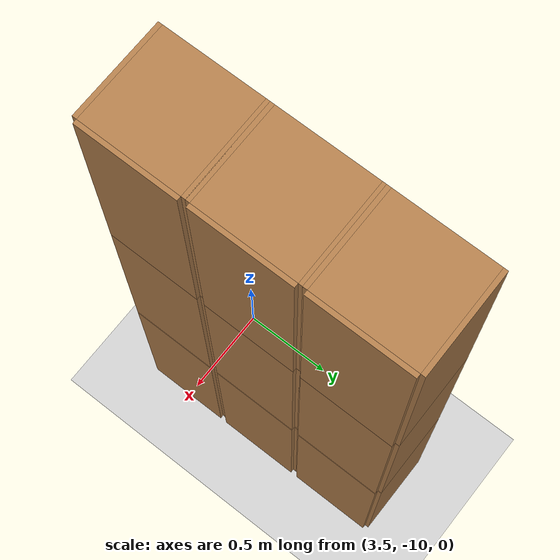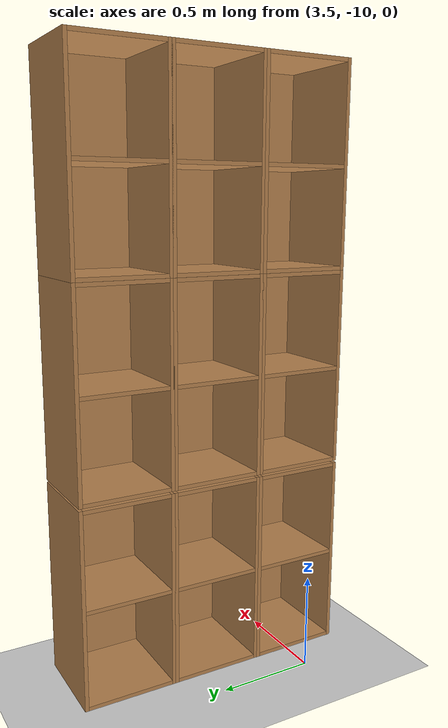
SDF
<sdf version="1.6">
 <world name="default">
  <model name="ground_plane">
   <static>1</static>
   <link name="link">
    <collision name="collision">
     <geometry><plane><normal>0 0 1</normal><size>100 100</size></plane></geometry>
     <surface>
      <contact><collide_bitmask>65535</collide_bitmask></contact>
      <friction><ode><mu>100</mu><mu2>50</mu2></ode></friction>
     </surface>
    </collision>
    <visual name="visual">
     <cast_shadows>0</cast_shadows>
     <geometry><plane><normal>0 0 1</normal><size>100 100</size></plane></geometry>
     <material>
      <script><uri>file://media/materials/scripts/gazebo.material</uri><name>Gazebo/Grey</name></script>
     </material>
    </visual>
   </link>
  </model>
  <model name="Locker18">
   <model name="Locker18">
    <model name="Locker3">
     <model name="cabinet">
      <static>1</static>
      <link name="cabinet_bottom_plate">
       <inertial>
        <pose>0 0 -1 0 -0 0</pose>
        <inertia><ixx>2.05</ixx><ixy>0</ixy><ixz>0</ixz><iyy>2.05</iyy><iyz>0</iyz><izz>2.05</izz></inertia>
        <mass>25</mass>
       </inertial>
       <collision name="cabinet_bottom_plate_geom">
        <pose>0 0 0.01 0 -0 0</pose>
        <geometry><box><size>0.45 0.45 0.02</size></box></geometry>
       </collision>
       <visual name="cabinet_bottom_plate_geom_visual">
        <pose>0 0 0.01 0 -0 0</pose>
        <geometry><box><size>0.45 0.45 0.02</size></box></geometry>
        <material>
         <script><uri>file://media/materials/scripts/gazebo.material</uri><name>Gazebo/Wood</name></script>
        </material>
       </visual>
       <collision name="cabinet_bottom_plate_geom_cabinet_back_plate">
        <pose>0.235 0 0.51 0 -0 0</pose>
        <geometry><box><size>0.02 0.45 1.02</size></box></geometry>
       </collision>
       <visual name="cabinet_bottom_plate_geom_cabinet_back_plate_visual">
        <pose>0.235 0 0.51 0 -0 0</pose>
        <geometry><box><size>0.02 0.45 1.02</size></box></geometry>
        <material>
         <script><uri>file://media/materials/scripts/gazebo.material</uri><name>Gazebo/Wood</name></script>
        </material>
       </visual>
       <collision name="cabinet_bottom_plate_geom_cabinet_left_plate">
        <pose>0 0.235 0.51 0 -0 0</pose>
        <geometry><box><size>0.45 0.02 1.02</size></box></geometry>
       </collision>
       <visual name="cabinet_bottom_plate_geom_cabinet_left_plate_visual">
        <pose>0 0.235 0.51 0 -0 0</pose>
        <geometry><box><size>0.45 0.02 1.02</size></box></geometry>
        <material>
         <script><uri>file://media/materials/scripts/gazebo.material</uri><name>Gazebo/Wood</name></script>
        </material>
       </visual>
       <collision name="cabinet_bottom_plate_geom_cabinet_middle_plate">
        <pose>0 0 0.51 0 -0 0</pose>
        <geometry><box><size>0.45 0.45 0.02</size></box></geometry>
       </collision>
       <visual name="cabinet_bottom_plate_geom_cabinet_middle_plate_visual">
        <pose>0 0 0.51 0 -0 0</pose>
        <geometry><box><size>0.45 0.45 0.02</size></box></geometry>
        <material>
         <script><uri>file://media/materials/scripts/gazebo.material</uri><name>Gazebo/Wood</name></script>
        </material>
       </visual>
       <collision name="cabinet_bottom_plate_geom_cabinet_right_plate">
        <pose>0 -0.235 0.51 0 -0 0</pose>
        <geometry><box><size>0.45 0.02 1.02</size></box></geometry>
       </collision>
       <visual name="cabinet_bottom_plate_geom_cabinet_right_plate_visual">
        <pose>0 -0.235 0.51 0 -0 0</pose>
        <geometry><box><size>0.45 0.02 1.02</size></box></geometry>
        <material>
         <script><uri>file://media/materials/scripts/gazebo.material</uri><name>Gazebo/Wood</name></script>
        </material>
       </visual>
       <collision name="cabinet_bottom_plate_geom_cabinet_top_plate">
        <pose>0 0 1.01 0 -0 0</pose>
        <geometry><box><size>0.45 0.45 0.02</size></box></geometry>
       </collision>
       <visual name="cabinet_bottom_plate_geom_cabinet_top_plate_visual">
        <pose>0 0 1.01 0 -0 0</pose>
        <geometry><box><size>0.45 0.45 0.02</size></box></geometry>
        <material>
         <script><uri>file://media/materials/scripts/gazebo.material</uri><name>Gazebo/Wood</name></script>
        </material>
       </visual>
      </link>
      <pose>-0.676968 1.45758 0 0 -0 0</pose>
     </model>
     <model name="cabinet_clone">
      <static>1</static>
      <link name="cabinet_bottom_plate">
       <inertial>
        <pose>0 0 -1 0 -0 0</pose>
        <inertia><ixx>2.05</ixx><ixy>0</ixy><ixz>0</ixz><iyy>2.05</iyy><iyz>0</iyz><izz>2.05</izz></inertia>
        <mass>25</mass>
       </inertial>
       <collision name="cabinet_bottom_plate_geom">
        <pose>0 0 0.01 0 -0 0</pose>
        <geometry><box><size>0.45 0.45 0.02</size></box></geometry>
       </collision>
       <visual name="cabinet_bottom_plate_geom_visual">
        <pose>0 0 0.01 0 -0 0</pose>
        <geometry><box><size>0.45 0.45 0.02</size></box></geometry>
        <material>
         <script><uri>file://media/materials/scripts/gazebo.material</uri><name>Gazebo/Wood</name></script>
        </material>
       </visual>
       <collision name="cabinet_bottom_plate_geom_cabinet_back_plate">
        <pose>0.235 0 0.51 0 -0 0</pose>
        <geometry><box><size>0.02 0.45 1.02</size></box></geometry>
       </collision>
       <visual name="cabinet_bottom_plate_geom_cabinet_back_plate_visual">
        <pose>0.235 0 0.51 0 -0 0</pose>
        <geometry><box><size>0.02 0.45 1.02</size></box></geometry>
        <material>
         <script><uri>file://media/materials/scripts/gazebo.material</uri><name>Gazebo/Wood</name></script>
        </material>
       </visual>
       <collision name="cabinet_bottom_plate_geom_cabinet_left_plate">
        <pose>0 0.235 0.51 0 -0 0</pose>
        <geometry><box><size>0.45 0.02 1.02</size></box></geometry>
       </collision>
       <visual name="cabinet_bottom_plate_geom_cabinet_left_plate_visual">
        <pose>0 0.235 0.51 0 -0 0</pose>
        <geometry><box><size>0.45 0.02 1.02</size></box></geometry>
        <material>
         <script><uri>file://media/materials/scripts/gazebo.material</uri><name>Gazebo/Wood</name></script>
        </material>
       </visual>
       <collision name="cabinet_bottom_plate_geom_cabinet_middle_plate">
        <pose>0 0 0.51 0 -0 0</pose>
        <geometry><box><size>0.45 0.45 0.02</size></box></geometry>
       </collision>
       <visual name="cabinet_bottom_plate_geom_cabinet_middle_plate_visual">
        <pose>0 0 0.51 0 -0 0</pose>
        <geometry><box><size>0.45 0.45 0.02</size></box></geometry>
        <material>
         <script><uri>file://media/materials/scripts/gazebo.material</uri><name>Gazebo/Wood</name></script>
        </material>
       </visual>
       <collision name="cabinet_bottom_plate_geom_cabinet_right_plate">
        <pose>0 -0.235 0.51 0 -0 0</pose>
        <geometry><box><size>0.45 0.02 1.02</size></box></geometry>
       </collision>
       <visual name="cabinet_bottom_plate_geom_cabinet_right_plate_visual">
        <pose>0 -0.235 0.51 0 -0 0</pose>
        <geometry><box><size>0.45 0.02 1.02</size></box></geometry>
        <material>
         <script><uri>file://media/materials/scripts/gazebo.material</uri><name>Gazebo/Wood</name></script>
        </material>
       </visual>
       <collision name="cabinet_bottom_plate_geom_cabinet_top_plate">
        <pose>0 0 1.01 0 -0 0</pose>
        <geometry><box><size>0.45 0.45 0.02</size></box></geometry>
       </collision>
       <visual name="cabinet_bottom_plate_geom_cabinet_top_plate_visual">
        <pose>0 0 1.01 0 -0 0</pose>
        <geometry><box><size>0.45 0.45 0.02</size></box></geometry>
        <material>
         <script><uri>file://media/materials/scripts/gazebo.material</uri><name>Gazebo/Wood</name></script>
        </material>
       </visual>
      </link>
      <pose>-0.676968 0.970971 0 0 -0 0</pose>
     </model>
     <model name="cabinet_clone_0">
      <static>1</static>
      <link name="cabinet_bottom_plate">
       <inertial>
        <pose>0 0 -1 0 -0 0</pose>
        <inertia><ixx>2.05</ixx><ixy>0</ixy><ixz>0</ixz><iyy>2.05</iyy><iyz>0</iyz><izz>2.05</izz></inertia>
        <mass>25</mass>
       </inertial>
       <collision name="cabinet_bottom_plate_geom">
        <pose>0 0 0.01 0 -0 0</pose>
        <geometry><box><size>0.45 0.45 0.02</size></box></geometry>
       </collision>
       <visual name="cabinet_bottom_plate_geom_visual">
        <pose>0 0 0.01 0 -0 0</pose>
        <geometry><box><size>0.45 0.45 0.02</size></box></geometry>
        <material>
         <script><uri>file://media/materials/scripts/gazebo.material</uri><name>Gazebo/Wood</name></script>
        </material>
       </visual>
       <collision name="cabinet_bottom_plate_geom_cabinet_back_plate">
        <pose>0.235 0 0.51 0 -0 0</pose>
        <geometry><box><size>0.02 0.45 1.02</size></box></geometry>
       </collision>
       <visual name="cabinet_bottom_plate_geom_cabinet_back_plate_visual">
        <pose>0.235 0 0.51 0 -0 0</pose>
        <geometry><box><size>0.02 0.45 1.02</size></box></geometry>
        <material>
         <script><uri>file://media/materials/scripts/gazebo.material</uri><name>Gazebo/Wood</name></script>
        </material>
       </visual>
       <collision name="cabinet_bottom_plate_geom_cabinet_left_plate">
        <pose>0 0.235 0.51 0 -0 0</pose>
        <geometry><box><size>0.45 0.02 1.02</size></box></geometry>
       </collision>
       <visual name="cabinet_bottom_plate_geom_cabinet_left_plate_visual">
        <pose>0 0.235 0.51 0 -0 0</pose>
        <geometry><box><size>0.45 0.02 1.02</size></box></geometry>
        <material>
         <script><uri>file://media/materials/scripts/gazebo.material</uri><name>Gazebo/Wood</name></script>
        </material>
       </visual>
       <collision name="cabinet_bottom_plate_geom_cabinet_middle_plate">
        <pose>0 0 0.51 0 -0 0</pose>
        <geometry><box><size>0.45 0.45 0.02</size></box></geometry>
       </collision>
       <visual name="cabinet_bottom_plate_geom_cabinet_middle_plate_visual">
        <pose>0 0 0.51 0 -0 0</pose>
        <geometry><box><size>0.45 0.45 0.02</size></box></geometry>
        <material>
         <script><uri>file://media/materials/scripts/gazebo.material</uri><name>Gazebo/Wood</name></script>
        </material>
       </visual>
       <collision name="cabinet_bottom_plate_geom_cabinet_right_plate">
        <pose>0 -0.235 0.51 0 -0 0</pose>
        <geometry><box><size>0.45 0.02 1.02</size></box></geometry>
       </collision>
       <visual name="cabinet_bottom_plate_geom_cabinet_right_plate_visual">
        <pose>0 -0.235 0.51 0 -0 0</pose>
        <geometry><box><size>0.45 0.02 1.02</size></box></geometry>
        <material>
         <script><uri>file://media/materials/scripts/gazebo.material</uri><name>Gazebo/Wood</name></script>
        </material>
       </visual>
       <collision name="cabinet_bottom_plate_geom_cabinet_top_plate">
        <pose>0 0 1.01 0 -0 0</pose>
        <geometry><box><size>0.45 0.45 0.02</size></box></geometry>
       </collision>
       <visual name="cabinet_bottom_plate_geom_cabinet_top_plate_visual">
        <pose>0 0 1.01 0 -0 0</pose>
        <geometry><box><size>0.45 0.45 0.02</size></box></geometry>
        <material>
         <script><uri>file://media/materials/scripts/gazebo.material</uri><name>Gazebo/Wood</name></script>
        </material>
       </visual>
      </link>
      <pose>-0.676968 0.48391 0 0 -0 0</pose>
     </model>
     <static>0</static>
     <pose>0 3e-06 -1.02763 0 -0 0</pose>
    </model>
    <model name="Locker3_clone">
     <model name="cabinet">
      <static>1</static>
      <link name="cabinet_bottom_plate">
       <inertial>
        <pose>0 0 -1 0 -0 0</pose>
        <inertia><ixx>2.05</ixx><ixy>0</ixy><ixz>0</ixz><iyy>2.05</iyy><iyz>0</iyz><izz>2.05</izz></inertia>
        <mass>25</mass>
       </inertial>
       <collision name="cabinet_bottom_plate_geom">
        <pose>0 0 0.01 0 -0 0</pose>
        <geometry><box><size>0.45 0.45 0.02</size></box></geometry>
       </collision>
       <visual name="cabinet_bottom_plate_geom_visual">
        <pose>0 0 0.01 0 -0 0</pose>
        <geometry><box><size>0.45 0.45 0.02</size></box></geometry>
        <material>
         <script><uri>file://media/materials/scripts/gazebo.material</uri><name>Gazebo/Wood</name></script>
        </material>
       </visual>
       <collision name="cabinet_bottom_plate_geom_cabinet_back_plate">
        <pose>0.235 0 0.51 0 -0 0</pose>
        <geometry><box><size>0.02 0.45 1.02</size></box></geometry>
       </collision>
       <visual name="cabinet_bottom_plate_geom_cabinet_back_plate_visual">
        <pose>0.235 0 0.51 0 -0 0</pose>
        <geometry><box><size>0.02 0.45 1.02</size></box></geometry>
        <material>
         <script><uri>file://media/materials/scripts/gazebo.material</uri><name>Gazebo/Wood</name></script>
        </material>
       </visual>
       <collision name="cabinet_bottom_plate_geom_cabinet_left_plate">
        <pose>0 0.235 0.51 0 -0 0</pose>
        <geometry><box><size>0.45 0.02 1.02</size></box></geometry>
       </collision>
       <visual name="cabinet_bottom_plate_geom_cabinet_left_plate_visual">
        <pose>0 0.235 0.51 0 -0 0</pose>
        <geometry><box><size>0.45 0.02 1.02</size></box></geometry>
        <material>
         <script><uri>file://media/materials/scripts/gazebo.material</uri><name>Gazebo/Wood</name></script>
        </material>
       </visual>
       <collision name="cabinet_bottom_plate_geom_cabinet_middle_plate">
        <pose>0 0 0.51 0 -0 0</pose>
        <geometry><box><size>0.45 0.45 0.02</size></box></geometry>
       </collision>
       <visual name="cabinet_bottom_plate_geom_cabinet_middle_plate_visual">
        <pose>0 0 0.51 0 -0 0</pose>
        <geometry><box><size>0.45 0.45 0.02</size></box></geometry>
        <material>
         <script><uri>file://media/materials/scripts/gazebo.material</uri><name>Gazebo/Wood</name></script>
        </material>
       </visual>
       <collision name="cabinet_bottom_plate_geom_cabinet_right_plate">
        <pose>0 -0.235 0.51 0 -0 0</pose>
        <geometry><box><size>0.45 0.02 1.02</size></box></geometry>
       </collision>
       <visual name="cabinet_bottom_plate_geom_cabinet_right_plate_visual">
        <pose>0 -0.235 0.51 0 -0 0</pose>
        <geometry><box><size>0.45 0.02 1.02</size></box></geometry>
        <material>
         <script><uri>file://media/materials/scripts/gazebo.material</uri><name>Gazebo/Wood</name></script>
        </material>
       </visual>
       <collision name="cabinet_bottom_plate_geom_cabinet_top_plate">
        <pose>0 0 1.01 0 -0 0</pose>
        <geometry><box><size>0.45 0.45 0.02</size></box></geometry>
       </collision>
       <visual name="cabinet_bottom_plate_geom_cabinet_top_plate_visual">
        <pose>0 0 1.01 0 -0 0</pose>
        <geometry><box><size>0.45 0.45 0.02</size></box></geometry>
        <material>
         <script><uri>file://media/materials/scripts/gazebo.material</uri><name>Gazebo/Wood</name></script>
        </material>
       </visual>
      </link>
      <pose>-0.676968 1.45758 0 0 -0 0</pose>
     </model>
     <model name="cabinet_clone">
      <static>1</static>
      <link name="cabinet_bottom_plate">
       <inertial>
        <pose>0 0 -1 0 -0 0</pose>
        <inertia><ixx>2.05</ixx><ixy>0</ixy><ixz>0</ixz><iyy>2.05</iyy><iyz>0</iyz><izz>2.05</izz></inertia>
        <mass>25</mass>
       </inertial>
       <collision name="cabinet_bottom_plate_geom">
        <pose>0 0 0.01 0 -0 0</pose>
        <geometry><box><size>0.45 0.45 0.02</size></box></geometry>
       </collision>
       <visual name="cabinet_bottom_plate_geom_visual">
        <pose>0 0 0.01 0 -0 0</pose>
        <geometry><box><size>0.45 0.45 0.02</size></box></geometry>
        <material>
         <script><uri>file://media/materials/scripts/gazebo.material</uri><name>Gazebo/Wood</name></script>
        </material>
       </visual>
       <collision name="cabinet_bottom_plate_geom_cabinet_back_plate">
        <pose>0.235 0 0.51 0 -0 0</pose>
        <geometry><box><size>0.02 0.45 1.02</size></box></geometry>
       </collision>
       <visual name="cabinet_bottom_plate_geom_cabinet_back_plate_visual">
        <pose>0.235 0 0.51 0 -0 0</pose>
        <geometry><box><size>0.02 0.45 1.02</size></box></geometry>
        <material>
         <script><uri>file://media/materials/scripts/gazebo.material</uri><name>Gazebo/Wood</name></script>
        </material>
       </visual>
       <collision name="cabinet_bottom_plate_geom_cabinet_left_plate">
        <pose>0 0.235 0.51 0 -0 0</pose>
        <geometry><box><size>0.45 0.02 1.02</size></box></geometry>
       </collision>
       <visual name="cabinet_bottom_plate_geom_cabinet_left_plate_visual">
        <pose>0 0.235 0.51 0 -0 0</pose>
        <geometry><box><size>0.45 0.02 1.02</size></box></geometry>
        <material>
         <script><uri>file://media/materials/scripts/gazebo.material</uri><name>Gazebo/Wood</name></script>
        </material>
       </visual>
       <collision name="cabinet_bottom_plate_geom_cabinet_middle_plate">
        <pose>0 0 0.51 0 -0 0</pose>
        <geometry><box><size>0.45 0.45 0.02</size></box></geometry>
       </collision>
       <visual name="cabinet_bottom_plate_geom_cabinet_middle_plate_visual">
        <pose>0 0 0.51 0 -0 0</pose>
        <geometry><box><size>0.45 0.45 0.02</size></box></geometry>
        <material>
         <script><uri>file://media/materials/scripts/gazebo.material</uri><name>Gazebo/Wood</name></script>
        </material>
       </visual>
       <collision name="cabinet_bottom_plate_geom_cabinet_right_plate">
        <pose>0 -0.235 0.51 0 -0 0</pose>
        <geometry><box><size>0.45 0.02 1.02</size></box></geometry>
       </collision>
       <visual name="cabinet_bottom_plate_geom_cabinet_right_plate_visual">
        <pose>0 -0.235 0.51 0 -0 0</pose>
        <geometry><box><size>0.45 0.02 1.02</size></box></geometry>
        <material>
         <script><uri>file://media/materials/scripts/gazebo.material</uri><name>Gazebo/Wood</name></script>
        </material>
       </visual>
       <collision name="cabinet_bottom_plate_geom_cabinet_top_plate">
        <pose>0 0 1.01 0 -0 0</pose>
        <geometry><box><size>0.45 0.45 0.02</size></box></geometry>
       </collision>
       <visual name="cabinet_bottom_plate_geom_cabinet_top_plate_visual">
        <pose>0 0 1.01 0 -0 0</pose>
        <geometry><box><size>0.45 0.45 0.02</size></box></geometry>
        <material>
         <script><uri>file://media/materials/scripts/gazebo.material</uri><name>Gazebo/Wood</name></script>
        </material>
       </visual>
      </link>
      <pose>-0.676968 0.970971 0 0 -0 0</pose>
     </model>
     <model name="cabinet_clone_0">
      <static>1</static>
      <link name="cabinet_bottom_plate">
       <inertial>
        <pose>0 0 -1 0 -0 0</pose>
        <inertia><ixx>2.05</ixx><ixy>0</ixy><ixz>0</ixz><iyy>2.05</iyy><iyz>0</iyz><izz>2.05</izz></inertia>
        <mass>25</mass>
       </inertial>
       <collision name="cabinet_bottom_plate_geom">
        <pose>0 0 0.01 0 -0 0</pose>
        <geometry><box><size>0.45 0.45 0.02</size></box></geometry>
       </collision>
       <visual name="cabinet_bottom_plate_geom_visual">
        <pose>0 0 0.01 0 -0 0</pose>
        <geometry><box><size>0.45 0.45 0.02</size></box></geometry>
        <material>
         <script><uri>file://media/materials/scripts/gazebo.material</uri><name>Gazebo/Wood</name></script>
        </material>
       </visual>
       <collision name="cabinet_bottom_plate_geom_cabinet_back_plate">
        <pose>0.235 0 0.51 0 -0 0</pose>
        <geometry><box><size>0.02 0.45 1.02</size></box></geometry>
       </collision>
       <visual name="cabinet_bottom_plate_geom_cabinet_back_plate_visual">
        <pose>0.235 0 0.51 0 -0 0</pose>
        <geometry><box><size>0.02 0.45 1.02</size></box></geometry>
        <material>
         <script><uri>file://media/materials/scripts/gazebo.material</uri><name>Gazebo/Wood</name></script>
        </material>
       </visual>
       <collision name="cabinet_bottom_plate_geom_cabinet_left_plate">
        <pose>0 0.235 0.51 0 -0 0</pose>
        <geometry><box><size>0.45 0.02 1.02</size></box></geometry>
       </collision>
       <visual name="cabinet_bottom_plate_geom_cabinet_left_plate_visual">
        <pose>0 0.235 0.51 0 -0 0</pose>
        <geometry><box><size>0.45 0.02 1.02</size></box></geometry>
        <material>
         <script><uri>file://media/materials/scripts/gazebo.material</uri><name>Gazebo/Wood</name></script>
        </material>
       </visual>
       <collision name="cabinet_bottom_plate_geom_cabinet_middle_plate">
        <pose>0 0 0.51 0 -0 0</pose>
        <geometry><box><size>0.45 0.45 0.02</size></box></geometry>
       </collision>
       <visual name="cabinet_bottom_plate_geom_cabinet_middle_plate_visual">
        <pose>0 0 0.51 0 -0 0</pose>
        <geometry><box><size>0.45 0.45 0.02</size></box></geometry>
        <material>
         <script><uri>file://media/materials/scripts/gazebo.material</uri><name>Gazebo/Wood</name></script>
        </material>
       </visual>
       <collision name="cabinet_bottom_plate_geom_cabinet_right_plate">
        <pose>0 -0.235 0.51 0 -0 0</pose>
        <geometry><box><size>0.45 0.02 1.02</size></box></geometry>
       </collision>
       <visual name="cabinet_bottom_plate_geom_cabinet_right_plate_visual">
        <pose>0 -0.235 0.51 0 -0 0</pose>
        <geometry><box><size>0.45 0.02 1.02</size></box></geometry>
        <material>
         <script><uri>file://media/materials/scripts/gazebo.material</uri><name>Gazebo/Wood</name></script>
        </material>
       </visual>
       <collision name="cabinet_bottom_plate_geom_cabinet_top_plate">
        <pose>0 0 1.01 0 -0 0</pose>
        <geometry><box><size>0.45 0.45 0.02</size></box></geometry>
       </collision>
       <visual name="cabinet_bottom_plate_geom_cabinet_top_plate_visual">
        <pose>0 0 1.01 0 -0 0</pose>
        <geometry><box><size>0.45 0.45 0.02</size></box></geometry>
        <material>
         <script><uri>file://media/materials/scripts/gazebo.material</uri><name>Gazebo/Wood</name></script>
        </material>
       </visual>
      </link>
      <pose>-0.676968 0.48391 0 0 -0 0</pose>
     </model>
     <static>0</static>
     <pose>0 3e-06 0.003717 0 -0 0</pose>
    </model>
    <model name="Locker3_clone_clone">
     <model name="cabinet">
      <static>1</static>
      <link name="cabinet_bottom_plate">
       <inertial>
        <pose>0 0 -1 0 -0 0</pose>
        <inertia><ixx>2.05</ixx><ixy>0</ixy><ixz>0</ixz><iyy>2.05</iyy><iyz>0</iyz><izz>2.05</izz></inertia>
        <mass>25</mass>
       </inertial>
       <collision name="cabinet_bottom_plate_geom">
        <pose>0 0 0.01 0 -0 0</pose>
        <geometry><box><size>0.45 0.45 0.02</size></box></geometry>
       </collision>
       <visual name="cabinet_bottom_plate_geom_visual">
        <pose>0 0 0.01 0 -0 0</pose>
        <geometry><box><size>0.45 0.45 0.02</size></box></geometry>
        <material>
         <script><uri>file://media/materials/scripts/gazebo.material</uri><name>Gazebo/Wood</name></script>
        </material>
       </visual>
       <collision name="cabinet_bottom_plate_geom_cabinet_back_plate">
        <pose>0.235 0 0.51 0 -0 0</pose>
        <geometry><box><size>0.02 0.45 1.02</size></box></geometry>
       </collision>
       <visual name="cabinet_bottom_plate_geom_cabinet_back_plate_visual">
        <pose>0.235 0 0.51 0 -0 0</pose>
        <geometry><box><size>0.02 0.45 1.02</size></box></geometry>
        <material>
         <script><uri>file://media/materials/scripts/gazebo.material</uri><name>Gazebo/Wood</name></script>
        </material>
       </visual>
       <collision name="cabinet_bottom_plate_geom_cabinet_left_plate">
        <pose>0 0.235 0.51 0 -0 0</pose>
        <geometry><box><size>0.45 0.02 1.02</size></box></geometry>
       </collision>
       <visual name="cabinet_bottom_plate_geom_cabinet_left_plate_visual">
        <pose>0 0.235 0.51 0 -0 0</pose>
        <geometry><box><size>0.45 0.02 1.02</size></box></geometry>
        <material>
         <script><uri>file://media/materials/scripts/gazebo.material</uri><name>Gazebo/Wood</name></script>
        </material>
       </visual>
       <collision name="cabinet_bottom_plate_geom_cabinet_middle_plate">
        <pose>0 0 0.51 0 -0 0</pose>
        <geometry><box><size>0.45 0.45 0.02</size></box></geometry>
       </collision>
       <visual name="cabinet_bottom_plate_geom_cabinet_middle_plate_visual">
        <pose>0 0 0.51 0 -0 0</pose>
        <geometry><box><size>0.45 0.45 0.02</size></box></geometry>
        <material>
         <script><uri>file://media/materials/scripts/gazebo.material</uri><name>Gazebo/Wood</name></script>
        </material>
       </visual>
       <collision name="cabinet_bottom_plate_geom_cabinet_right_plate">
        <pose>0 -0.235 0.51 0 -0 0</pose>
        <geometry><box><size>0.45 0.02 1.02</size></box></geometry>
       </collision>
       <visual name="cabinet_bottom_plate_geom_cabinet_right_plate_visual">
        <pose>0 -0.235 0.51 0 -0 0</pose>
        <geometry><box><size>0.45 0.02 1.02</size></box></geometry>
        <material>
         <script><uri>file://media/materials/scripts/gazebo.material</uri><name>Gazebo/Wood</name></script>
        </material>
       </visual>
       <collision name="cabinet_bottom_plate_geom_cabinet_top_plate">
        <pose>0 0 1.01 0 -0 0</pose>
        <geometry><box><size>0.45 0.45 0.02</size></box></geometry>
       </collision>
       <visual name="cabinet_bottom_plate_geom_cabinet_top_plate_visual">
        <pose>0 0 1.01 0 -0 0</pose>
        <geometry><box><size>0.45 0.45 0.02</size></box></geometry>
        <material>
         <script><uri>file://media/materials/scripts/gazebo.material</uri><name>Gazebo/Wood</name></script>
        </material>
       </visual>
      </link>
      <pose>-0.676968 1.45758 0 0 -0 0</pose>
     </model>
     <model name="cabinet_clone">
      <static>1</static>
      <link name="cabinet_bottom_plate">
       <inertial>
        <pose>0 0 -1 0 -0 0</pose>
        <inertia><ixx>2.05</ixx><ixy>0</ixy><ixz>0</ixz><iyy>2.05</iyy><iyz>0</iyz><izz>2.05</izz></inertia>
        <mass>25</mass>
       </inertial>
       <collision name="cabinet_bottom_plate_geom">
        <pose>0 0 0.01 0 -0 0</pose>
        <geometry><box><size>0.45 0.45 0.02</size></box></geometry>
       </collision>
       <visual name="cabinet_bottom_plate_geom_visual">
        <pose>0 0 0.01 0 -0 0</pose>
        <geometry><box><size>0.45 0.45 0.02</size></box></geometry>
        <material>
         <script><uri>file://media/materials/scripts/gazebo.material</uri><name>Gazebo/Wood</name></script>
        </material>
       </visual>
       <collision name="cabinet_bottom_plate_geom_cabinet_back_plate">
        <pose>0.235 0 0.51 0 -0 0</pose>
        <geometry><box><size>0.02 0.45 1.02</size></box></geometry>
       </collision>
       <visual name="cabinet_bottom_plate_geom_cabinet_back_plate_visual">
        <pose>0.235 0 0.51 0 -0 0</pose>
        <geometry><box><size>0.02 0.45 1.02</size></box></geometry>
        <material>
         <script><uri>file://media/materials/scripts/gazebo.material</uri><name>Gazebo/Wood</name></script>
        </material>
       </visual>
       <collision name="cabinet_bottom_plate_geom_cabinet_left_plate">
        <pose>0 0.235 0.51 0 -0 0</pose>
        <geometry><box><size>0.45 0.02 1.02</size></box></geometry>
       </collision>
       <visual name="cabinet_bottom_plate_geom_cabinet_left_plate_visual">
        <pose>0 0.235 0.51 0 -0 0</pose>
        <geometry><box><size>0.45 0.02 1.02</size></box></geometry>
        <material>
         <script><uri>file://media/materials/scripts/gazebo.material</uri><name>Gazebo/Wood</name></script>
        </material>
       </visual>
       <collision name="cabinet_bottom_plate_geom_cabinet_middle_plate">
        <pose>0 0 0.51 0 -0 0</pose>
        <geometry><box><size>0.45 0.45 0.02</size></box></geometry>
       </collision>
       <visual name="cabinet_bottom_plate_geom_cabinet_middle_plate_visual">
        <pose>0 0 0.51 0 -0 0</pose>
        <geometry><box><size>0.45 0.45 0.02</size></box></geometry>
        <material>
         <script><uri>file://media/materials/scripts/gazebo.material</uri><name>Gazebo/Wood</name></script>
        </material>
       </visual>
       <collision name="cabinet_bottom_plate_geom_cabinet_right_plate">
        <pose>0 -0.235 0.51 0 -0 0</pose>
        <geometry><box><size>0.45 0.02 1.02</size></box></geometry>
       </collision>
       <visual name="cabinet_bottom_plate_geom_cabinet_right_plate_visual">
        <pose>0 -0.235 0.51 0 -0 0</pose>
        <geometry><box><size>0.45 0.02 1.02</size></box></geometry>
        <material>
         <script><uri>file://media/materials/scripts/gazebo.material</uri><name>Gazebo/Wood</name></script>
        </material>
       </visual>
       <collision name="cabinet_bottom_plate_geom_cabinet_top_plate">
        <pose>0 0 1.01 0 -0 0</pose>
        <geometry><box><size>0.45 0.45 0.02</size></box></geometry>
       </collision>
       <visual name="cabinet_bottom_plate_geom_cabinet_top_plate_visual">
        <pose>0 0 1.01 0 -0 0</pose>
        <geometry><box><size>0.45 0.45 0.02</size></box></geometry>
        <material>
         <script><uri>file://media/materials/scripts/gazebo.material</uri><name>Gazebo/Wood</name></script>
        </material>
       </visual>
      </link>
      <pose>-0.676968 0.970971 0 0 -0 0</pose>
     </model>
     <model name="cabinet_clone_0">
      <static>1</static>
      <link name="cabinet_bottom_plate">
       <inertial>
        <pose>0 0 -1 0 -0 0</pose>
        <inertia><ixx>2.05</ixx><ixy>0</ixy><ixz>0</ixz><iyy>2.05</iyy><iyz>0</iyz><izz>2.05</izz></inertia>
        <mass>25</mass>
       </inertial>
       <collision name="cabinet_bottom_plate_geom">
        <pose>0 0 0.01 0 -0 0</pose>
        <geometry><box><size>0.45 0.45 0.02</size></box></geometry>
       </collision>
       <visual name="cabinet_bottom_plate_geom_visual">
        <pose>0 0 0.01 0 -0 0</pose>
        <geometry><box><size>0.45 0.45 0.02</size></box></geometry>
        <material>
         <script><uri>file://media/materials/scripts/gazebo.material</uri><name>Gazebo/Wood</name></script>
        </material>
       </visual>
       <collision name="cabinet_bottom_plate_geom_cabinet_back_plate">
        <pose>0.235 0 0.51 0 -0 0</pose>
        <geometry><box><size>0.02 0.45 1.02</size></box></geometry>
       </collision>
       <visual name="cabinet_bottom_plate_geom_cabinet_back_plate_visual">
        <pose>0.235 0 0.51 0 -0 0</pose>
        <geometry><box><size>0.02 0.45 1.02</size></box></geometry>
        <material>
         <script><uri>file://media/materials/scripts/gazebo.material</uri><name>Gazebo/Wood</name></script>
        </material>
       </visual>
       <collision name="cabinet_bottom_plate_geom_cabinet_left_plate">
        <pose>0 0.235 0.51 0 -0 0</pose>
        <geometry><box><size>0.45 0.02 1.02</size></box></geometry>
       </collision>
       <visual name="cabinet_bottom_plate_geom_cabinet_left_plate_visual">
        <pose>0 0.235 0.51 0 -0 0</pose>
        <geometry><box><size>0.45 0.02 1.02</size></box></geometry>
        <material>
         <script><uri>file://media/materials/scripts/gazebo.material</uri><name>Gazebo/Wood</name></script>
        </material>
       </visual>
       <collision name="cabinet_bottom_plate_geom_cabinet_middle_plate">
        <pose>0 0 0.51 0 -0 0</pose>
        <geometry><box><size>0.45 0.45 0.02</size></box></geometry>
       </collision>
       <visual name="cabinet_bottom_plate_geom_cabinet_middle_plate_visual">
        <pose>0 0 0.51 0 -0 0</pose>
        <geometry><box><size>0.45 0.45 0.02</size></box></geometry>
        <material>
         <script><uri>file://media/materials/scripts/gazebo.material</uri><name>Gazebo/Wood</name></script>
        </material>
       </visual>
       <collision name="cabinet_bottom_plate_geom_cabinet_right_plate">
        <pose>0 -0.235 0.51 0 -0 0</pose>
        <geometry><box><size>0.45 0.02 1.02</size></box></geometry>
       </collision>
       <visual name="cabinet_bottom_plate_geom_cabinet_right_plate_visual">
        <pose>0 -0.235 0.51 0 -0 0</pose>
        <geometry><box><size>0.45 0.02 1.02</size></box></geometry>
        <material>
         <script><uri>file://media/materials/scripts/gazebo.material</uri><name>Gazebo/Wood</name></script>
        </material>
       </visual>
       <collision name="cabinet_bottom_plate_geom_cabinet_top_plate">
        <pose>0 0 1.01 0 -0 0</pose>
        <geometry><box><size>0.45 0.45 0.02</size></box></geometry>
       </collision>
       <visual name="cabinet_bottom_plate_geom_cabinet_top_plate_visual">
        <pose>0 0 1.01 0 -0 0</pose>
        <geometry><box><size>0.45 0.45 0.02</size></box></geometry>
        <material>
         <script><uri>file://media/materials/scripts/gazebo.material</uri><name>Gazebo/Wood</name></script>
        </material>
       </visual>
      </link>
      <pose>-0.676968 0.48391 0 0 -0 0</pose>
     </model>
     <static>0</static>
     <pose>0 3e-06 1.02391 0 -0 0</pose>
    </model>
    <static>0</static>
    <pose>-0 4e-06 4e-06 0 -0 0</pose>
   </model>
   <static>0</static>
   <pose>4.50277 -10.4792 1.08672 0 -0 0</pose>
  </model>
 </world>
</sdf>
